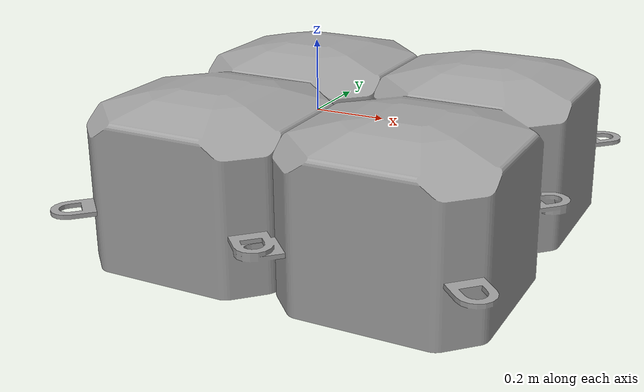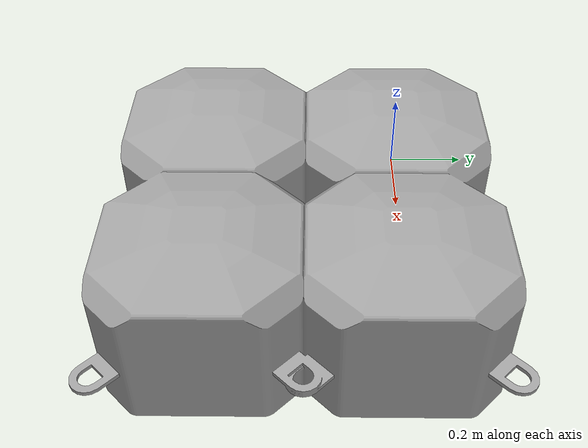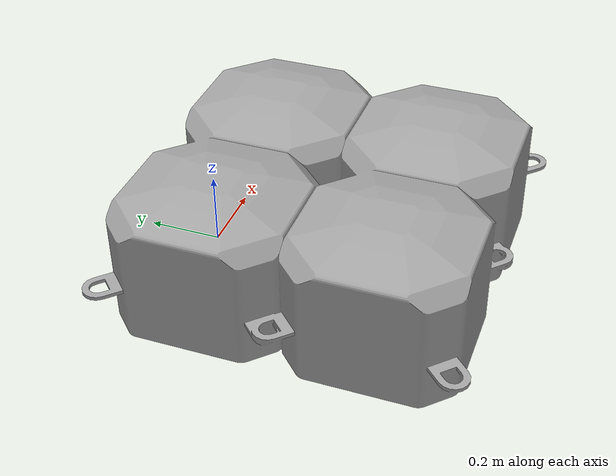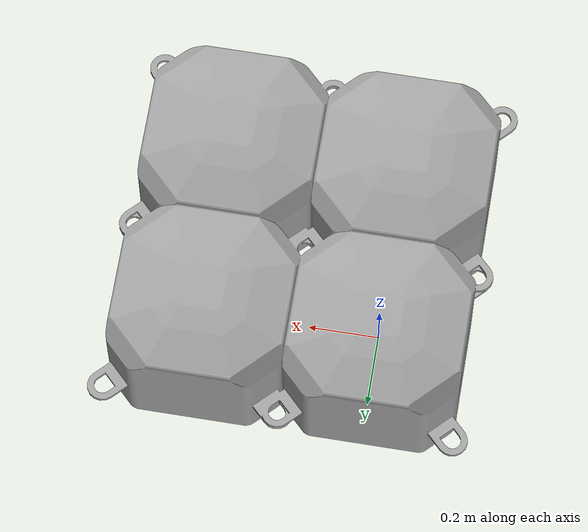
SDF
<?xml version="1.0"?>
<sdf version="1.5">
  <model name="dock_block_2x2">
    <static>false</static>
    <link name="link">
      <velocity_decay>
        <linear>0.001</linear>
        <angular>0.001</angular>
      </velocity_decay>
      <inertial>
        <pose>0.25 -0.25 0 0 0 0</pose>
        <mass>40</mass>
        <inertia>
          <ixx>3.8667</ixx>
          <ixy>0</ixy>
          <ixz>0</ixz>
          <iyy>3.8667</iyy>
          <iyz>0</iyz>
          <izz>6.6667</izz>
        </inertia>
      </inertial>
      <collision name="collision">
        <pose>0.25 -0.25 0 0 0 0</pose>
        <geometry>
          <box>
            <size>1 1 0.4</size>
          </box>
        </geometry>
      </collision>
      <visual name="visual">
        <pose> 0 0 0.2 0 0 0 </pose>
        <geometry>
          <mesh>
            <uri>file://dock_block_2x2/mesh/dock_block_2x2.dae</uri>
          </mesh>
        </geometry>
      </visual>
    </link>
    <plugin name="BuoyancyPlugin" filename="libbuoyancy_gazebo_plugin.so">
      <wave_model>ocean_waves</wave_model>
      <fluid_density>1000</fluid_density>
      <fluid_level>0</fluid_level>
      <linear_drag>1000.0</linear_drag>
      <angular_drag>200.0</angular_drag>
      <buoyancy name="buoyancy_base">
        <link_name>link</link_name>
      	<pose>0 0 -0.2 0 0 0</pose>
        <geometry>
          <box>
            <size>1 1 .4</size>
          </box>
        </geometry>
      </buoyancy>
    </plugin>
  </model>
</sdf>
